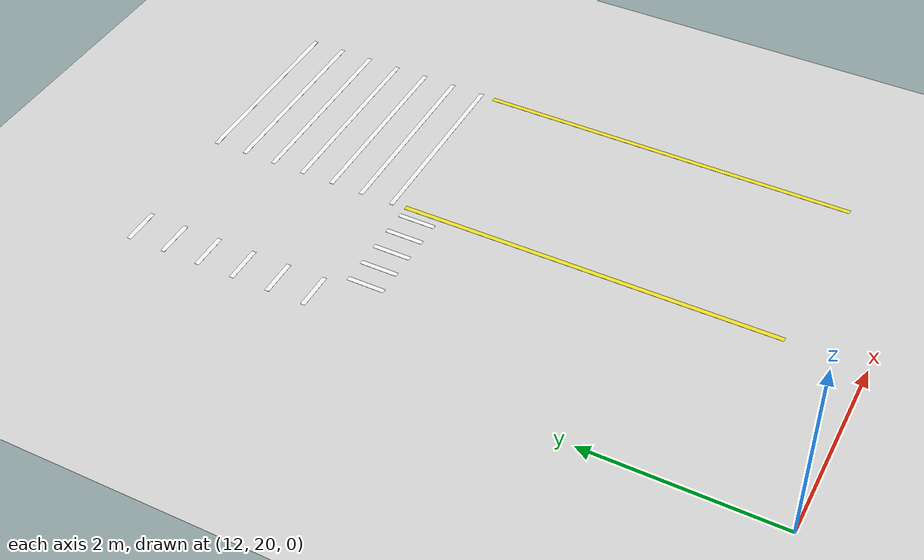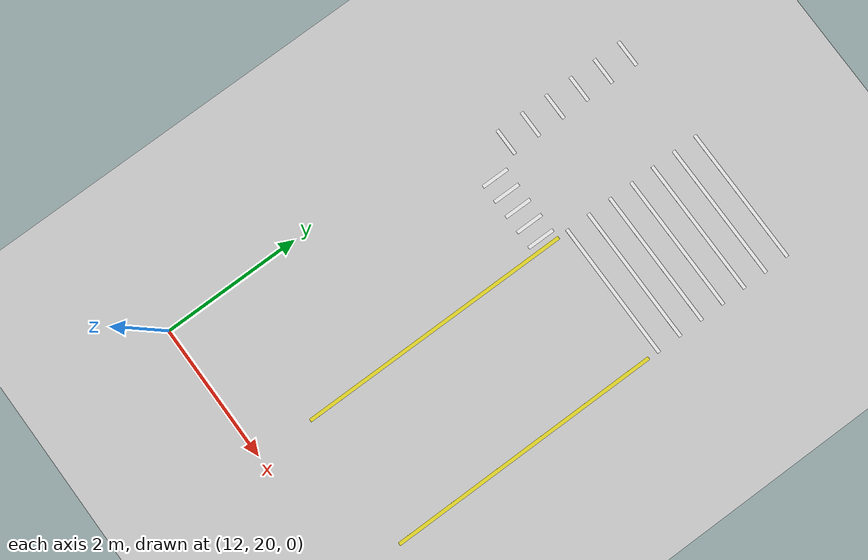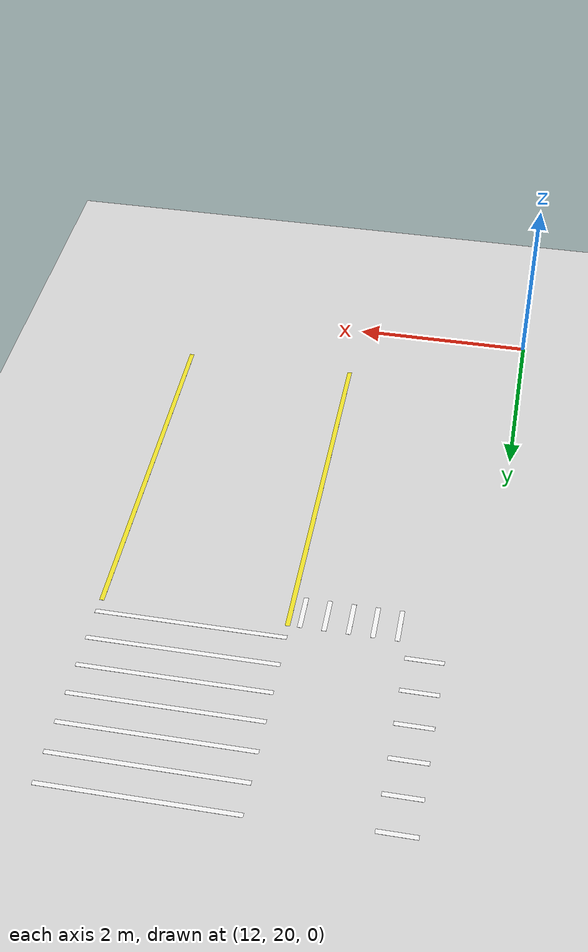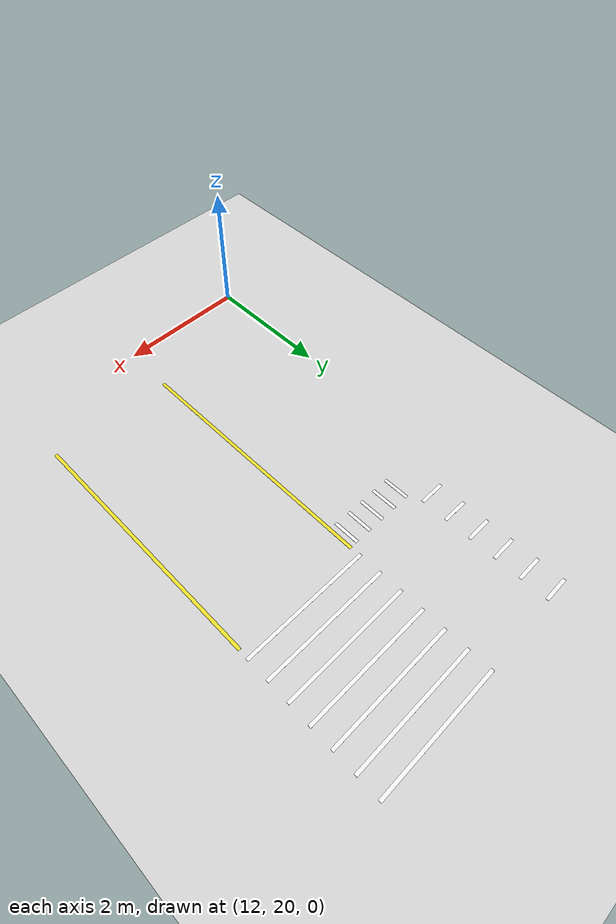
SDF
<sdf version="1.6">
 <world name="default">
  <model name="ground_plane">
   <static>1</static>
   <link name="link">
    <collision name="collision">
     <geometry><plane><normal>0 0 1</normal><size>100 100</size></plane></geometry>
     <surface><friction><ode><mu>100</mu><mu2>50</mu2></ode></friction></surface>
    </collision>
    <visual name="visual">
     <cast_shadows>0</cast_shadows>
     <geometry><plane><normal>0 0 1</normal><size>100 100</size></plane></geometry>
     <material>
      <script><uri>file://media/materials/scripts/gazebo.material</uri><name>Gazebo/Grey</name></script>
     </material>
    </visual>
   </link>
  </model>
  <model name="line4m_4">
   <link name="link_3">
    <inertial>
     <mass>1</mass>
     <inertia>
      <ixx>0.166667</ixx>
      <ixy>0</ixy>
      <ixz>0</ixz>
      <iyy>0.166667</iyy>
      <iyz>0</iyz>
      <izz>0.166667</izz>
     </inertia>
    </inertial>
    <visual name="visual">
     <geometry><box><size>0.05 4 0.001</size></box></geometry>
     <material>
      <lighting>1</lighting>
      <script><uri>file://media/materials/scripts/gazebo.material</uri><name>Gazebo/Yellow</name></script>
     </material>
    </visual>
   </link>
   <static>1</static>
   <pose>15.975 22.8 0 0 -0 0</pose>
  </model>
  <model name="line4m_5">
   <link name="link_3">
    <inertial>
     <mass>1</mass>
     <inertia>
      <ixx>0.166667</ixx>
      <ixy>0</ixy>
      <ixz>0</ixz>
      <iyy>0.166667</iyy>
      <iyz>0</iyz>
      <izz>0.166667</izz>
     </inertia>
    </inertial>
    <visual name="visual">
     <geometry><box><size>0.05 4 0.001</size></box></geometry>
     <material>
      <lighting>1</lighting>
      <script><uri>file://media/materials/scripts/gazebo.material</uri><name>Gazebo/Yellow</name></script>
     </material>
    </visual>
   </link>
   <static>1</static>
   <pose>14.025 22.8 0 0 -0 0</pose>
  </model>
  <model name="zebra_crossing_200cmx210cm_2">
   <link name="link_0">
    <inertial>
     <mass>1</mass>
     <inertia>
      <ixx>0.166667</ixx>
      <ixy>0</ixy>
      <ixz>0</ixz>
      <iyy>0.166667</iyy>
      <iyz>0</iyz>
      <izz>0.166667</izz>
     </inertia>
    </inertial>
    <visual name="ModelPreview_1::link_0::visual_6">
     <pose>-1.05 0 0 0 -0 0</pose>
     <geometry><box><size>0.05 2 0.001</size></box></geometry>
     <material>
      <lighting>1</lighting>
      <script><uri>file://media/materials/scripts/gazebo.material</uri><name>Gazebo/White</name></script>
     </material>
    </visual>
    <visual name="ModelPreview_1::link_0::visual_1">
     <pose>0.35 0 0 0 -0 0</pose>
     <geometry><box><size>0.05 2 0.001</size></box></geometry>
     <material>
      <lighting>1</lighting>
      <script><uri>file://media/materials/scripts/gazebo.material</uri><name>Gazebo/White</name></script>
     </material>
    </visual>
    <visual name="ModelPreview_1::link_0::visual_5">
     <pose>-0.7 0 0 0 -0 0</pose>
     <geometry><box><size>0.05 2 0.001</size></box></geometry>
     <material>
      <lighting>1</lighting>
      <script><uri>file://media/materials/scripts/gazebo.material</uri><name>Gazebo/White</name></script>
     </material>
    </visual>
    <visual name="ModelPreview_1::link_0::visual_3">
     <pose>1.05 0 0 0 -0 0</pose>
     <geometry><box><size>0.05 2 0.001</size></box></geometry>
     <material>
      <lighting>1</lighting>
      <script><uri>file://media/materials/scripts/gazebo.material</uri><name>Gazebo/White</name></script>
     </material>
    </visual>
    <visual name="ModelPreview_1::link_0::visual_2">
     <pose>0.7 0 0 0 -0 0</pose>
     <geometry><box><size>0.05 2 0.001</size></box></geometry>
     <material>
      <lighting>1</lighting>
      <script><uri>file://media/materials/scripts/gazebo.material</uri><name>Gazebo/White</name></script>
     </material>
    </visual>
    <visual name="visual">
     <geometry><box><size>0.05 2 0.001</size></box></geometry>
     <material>
      <lighting>1</lighting>
      <script><uri>file://media/materials/scripts/gazebo.material</uri><name>Gazebo/White</name></script>
     </material>
    </visual>
    <visual name="ModelPreview_1::link_0::visual_4">
     <pose>-0.35 0 0 0 -0 0</pose>
     <geometry><box><size>0.05 2 0.001</size></box></geometry>
     <material>
      <lighting>1</lighting>
      <script><uri>file://media/materials/scripts/gazebo.material</uri><name>Gazebo/White</name></script>
     </material>
    </visual>
    <collision name="collision_2">
     <pose>0.7 0 0 0 -0 0</pose>
     <geometry><box><size>0.05 2 1e-05</size></box></geometry>
    </collision>
    <collision name="collision_4">
     <pose>-0.35 0 0 0 -0 0</pose>
     <geometry><box><size>0.05 2 1e-05</size></box></geometry>
    </collision>
    <collision name="collision"><geometry><box><size>0.05 2 1e-05</size></box></geometry></collision>
    <collision name="collision_5">
     <pose>-0.7 0 0 0 -0 0</pose>
     <geometry><box><size>0.05 2 1e-05</size></box></geometry>
    </collision>
    <collision name="collision_1">
     <pose>0.35 0 0 0 -0 0</pose>
     <geometry><box><size>0.05 2 1e-05</size></box></geometry>
    </collision>
    <collision name="collision_3">
     <pose>1.05 0 0 0 -0 0</pose>
     <geometry><box><size>0.05 2 1e-05</size></box></geometry>
    </collision>
    <collision name="collision_6">
     <pose>-1.05 0 0 0 -0 0</pose>
     <geometry><box><size>0.05 2 1e-05</size></box></geometry>
    </collision>
   </link>
   <static>1</static>
   <pose>15 26 0 0 -0 1.5708</pose>
  </model>
  <model name="zebra_crossing_40cmx200cm_11">
   <link name="link_2">
    <inertial>
     <mass>1</mass>
     <inertia>
      <ixx>0.166667</ixx>
      <ixy>0</ixy>
      <ixz>0</ixz>
      <iyy>0.166667</iyy>
      <iyz>0</iyz>
      <izz>0.166667</izz>
     </inertia>
    </inertial>
    <visual name="ModelPreview_5::link_2::visual_1">
     <pose>-0.2 0 0 0 -0 0</pose>
     <geometry><box><size>0.05 0.4 0.001</size></box></geometry>
     <material>
      <lighting>1</lighting>
      <script><uri>file://media/materials/scripts/gazebo.material</uri><name>Gazebo/White</name></script>
     </material>
    </visual>
    <visual name="ModelPreview_5::link_2::visual_3">
     <pose>-0.6 0 0 0 -0 0</pose>
     <geometry><box><size>0.05 0.4 0.001</size></box></geometry>
     <material>
      <lighting>1</lighting>
      <script><uri>file://media/materials/scripts/gazebo.material</uri><name>Gazebo/White</name></script>
     </material>
    </visual>
    <visual name="ModelPreview_5::link_2::visual_4">
     <pose>1 0 0 0 -0 0</pose>
     <geometry><box><size>0.05 0.4 0.001</size></box></geometry>
     <material>
      <lighting>1</lighting>
      <script><uri>file://media/materials/scripts/gazebo.material</uri><name>Gazebo/White</name></script>
     </material>
    </visual>
    <visual name="visual">
     <pose>0.2 0 0 0 -0 0</pose>
     <geometry><box><size>0.05 0.4 0.001</size></box></geometry>
     <material>
      <lighting>1</lighting>
      <script><uri>file://media/materials/scripts/gazebo.material</uri><name>Gazebo/White</name></script>
     </material>
    </visual>
    <visual name="ModelPreview_5::link_2::visual_5">
     <pose>-1 0 0 0 -0 0</pose>
     <geometry><box><size>0.05 0.4 0.001</size></box></geometry>
     <material>
      <lighting>1</lighting>
      <script><uri>file://media/materials/scripts/gazebo.material</uri><name>Gazebo/White</name></script>
     </material>
    </visual>
    <visual name="ModelPreview_5::link_2::visual_2">
     <pose>0.6 0 0 0 -0 0</pose>
     <geometry><box><size>0.05 0.4 0.001</size></box></geometry>
     <material>
      <lighting>1</lighting>
      <script><uri>file://media/materials/scripts/gazebo.material</uri><name>Gazebo/White</name></script>
     </material>
    </visual>
    <collision name="collision_5">
     <pose>-1 0 0 0 -0 0</pose>
     <geometry><box><size>0.05 0.4 1e-05</size></box></geometry>
    </collision>
    <collision name="collision">
     <pose>0.2 0 0 0 -0 0</pose>
     <geometry><box><size>0.05 0.4 1e-05</size></box></geometry>
    </collision>
    <collision name="collision_3">
     <pose>-0.6 0 0 0 -0 0</pose>
     <geometry><box><size>0.05 0.4 1e-05</size></box></geometry>
    </collision>
    <collision name="collision_4">
     <pose>1 0 0 0 -0 0</pose>
     <geometry><box><size>0.05 0.4 1e-05</size></box></geometry>
    </collision>
    <collision name="collision_2">
     <pose>0.6 0 0 0 -0 0</pose>
     <geometry><box><size>0.05 0.4 1e-05</size></box></geometry>
    </collision>
    <collision name="collision_1">
     <pose>-0.2 0 0 0 -0 0</pose>
     <geometry><box><size>0.05 0.4 1e-05</size></box></geometry>
    </collision>
   </link>
   <static>1</static>
   <pose>12.6 26 0 0 -0 1.5708</pose>
  </model>
  <model name="zebro_crossing_40cmx120cm_1">
   <link name="link_1">
    <inertial>
     <mass>1</mass>
     <inertia>
      <ixx>0.166667</ixx>
      <ixy>0</ixy>
      <ixz>0</ixz>
      <iyy>0.166667</iyy>
      <iyz>0</iyz>
      <izz>0.166667</izz>
     </inertia>
    </inertial>
    <visual name="ModelPreview_3::link_1::visual_4">
     <pose>-0.5 0 0 0 -0 0</pose>
     <geometry><box><size>0.05 0.4 0.001</size></box></geometry>
     <material>
      <lighting>1</lighting>
      <script><uri>file://media/materials/scripts/gazebo.material</uri><name>Gazebo/White</name></script>
     </material>
    </visual>
    <visual name="ModelPreview_3::link_1::visual_1">
     <pose>0.25 0 0 0 -0 0</pose>
     <geometry><box><size>0.05 0.4 0.001</size></box></geometry>
     <material>
      <lighting>1</lighting>
      <script><uri>file://media/materials/scripts/gazebo.material</uri><name>Gazebo/White</name></script>
     </material>
    </visual>
    <visual name="ModelPreview_3::link_1::visual_2">
     <pose>0.5 0 0 0 -0 0</pose>
     <geometry><box><size>0.05 0.4 0.001</size></box></geometry>
     <material>
      <lighting>1</lighting>
      <script><uri>file://media/materials/scripts/gazebo.material</uri><name>Gazebo/White</name></script>
     </material>
    </visual>
    <visual name="visual">
     <geometry><box><size>0.05 0.4 0.001</size></box></geometry>
     <material>
      <lighting>1</lighting>
      <script><uri>file://media/materials/scripts/gazebo.material</uri><name>Gazebo/White</name></script>
     </material>
    </visual>
    <visual name="ModelPreview_3::link_1::visual_3">
     <pose>-0.25 0 0 0 -0 0</pose>
     <geometry><box><size>0.05 0.4 0.001</size></box></geometry>
     <material>
      <lighting>1</lighting>
      <script><uri>file://media/materials/scripts/gazebo.material</uri><name>Gazebo/White</name></script>
     </material>
    </visual>
    <collision name="collision_1">
     <pose>0.25 0 0 0 -0 0</pose>
     <geometry><box><size>0.05 0.4 1e-06</size></box></geometry>
    </collision>
    <collision name="collision_2">
     <pose>0.5 0 0 0 -0 0</pose>
     <geometry><box><size>0.05 0.4 1e-06</size></box></geometry>
    </collision>
    <collision name="collision_3">
     <pose>-0.25 0 0 0 -0 0</pose>
     <geometry><box><size>0.05 0.4 1e-06</size></box></geometry>
    </collision>
    <collision name="collision"><geometry><box><size>0.05 0.4 1e-06</size></box></geometry></collision>
    <collision name="collision_4">
     <pose>-0.5 0 0 0 -0 0</pose>
     <geometry><box><size>0.05 0.4 1e-06</size></box></geometry>
    </collision>
   </link>
   <static>1</static>
   <pose>13.4 24.6 0 0 -0 0</pose>
  </model>
 </world>
</sdf>
